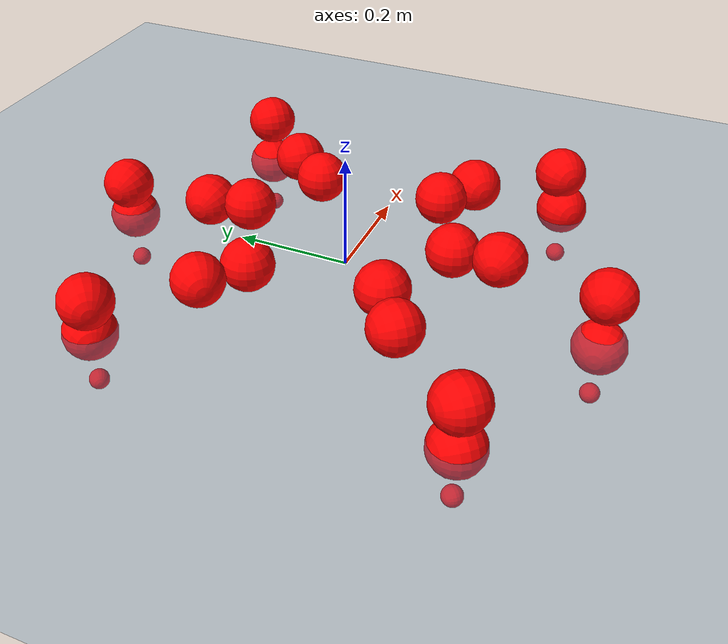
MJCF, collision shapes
<mujoco model="Golem">
  <compiler angle="radian" assetdir="assets" balanceinertia="true" inertiafromgeom="false"/>

  <option timestep="0.005" density="1.2" viscosity="2e-05"/>

  <size nkey="1"/>

  <visual>
    <quality shadowsize="8192"/>
    <map shadowclip="0.5"/>
  </visual>

  <default>
    <default class="/">
      <joint armature="0.01" damping="0.01" frictionloss="0.01"/>
      <geom contype="0" conaffinity="0" group="1" solref="-1000 -80"/>
      <site size="0.01 0.005 0.005" group="5"/>
      <general forcelimited="true" biastype="affine" gainprm="25" biasprm="0 -25 -0.5"/>
      <default class="visual">
        <geom type="mesh" group="2"/>
      </default>
      <default class="collision">
        <geom group="3"/>
      </default>
      <default class="foot">
        <geom size="0.01 0 0" condim="6" group="4" priority="1" solimp="0.015 1 0.01"/>
      </default>
      <default class="reward_collision_sphere">
        <geom group="5" rgba="1 0 0 1"/>
      </default>
    </default>
  </default>

  <asset>
    <texture type="skybox" colorspace="auto" name="//unnamed_texture_0" builtin="gradient" rgb1="0.95 0.95 0.95" rgb2="0.95 0.95 0.95" width="100" height="600"/>
    <texture type="2d" colorspace="auto" name="texplane" builtin="checker" rgb1="0.345 0.575 0.748" rgb2="0.345 0.575 0.748" markrgb="1 1 1" width="512" height="512"/>
    <material name="MatPlane" class="/" texture="texplane" texuniform="true" texrepeat="2 2" specular="0.9"/>
    <mesh name="body" class="/" file="body.stl" scale="0.001 0.001 0.001"/>
    <mesh name="coxa" class="/" file="coxa.stl" scale="0.001 0.001 0.001"/>
    <mesh name="femur" class="/" file="femur.stl" scale="0.001 0.001 0.001"/>
    <mesh name="tibia" class="/" file="tibia.stl" scale="0.001 0.001 0.001"/>
    <mesh name="tarsus" class="/" file="tarsus.stl" scale="0.001 0.001 0.001"/>
  </asset>

  <worldbody>
    <geom name="floor" class="/" size="100 100 0.125" type="plane" group="0" material="MatPlane"/>
    <light name="toplight_shadow" class="/" pos="0 0 5" dir="0.0990148 0.0990148 -0.990148" type="directional" ambient="0.04 0.04 0.04" diffuse="0.55 0.55 0.55" specular="0.12 0.12 0.12"/>
    <light name="toplight_fill" class="/" pos="0 0 5" dir="0.0990148 0.0990148 -0.990148" type="directional" castshadow="false" ambient="0.04 0.04 0.04" diffuse="0.3 0.3 0.3" specular="0.08 0.08 0.08"/>
    <body name="trunk" pos="0.00893009 0.00119352 0.00700664" quat="0.999999 0.000120267 0.000589787 -0.000953582">
      <inertial pos="0.00227082 0.00407223 0.0124089" quat="0.997983 -0.00672603 -0.0599746 -0.0197078" mass="5.74034" diaginertia="0.00718633 0.0992001 0.00606301"/>
      <joint name="//unnamed_joint_0" type="free"/>
      <geom name="//unnamed_geom_1" class="/" pos="0 0 0.0569268" quat="1 0 0 0" type="mesh" rgba="0.9 0.9 0.9 1" mesh="body"/>
      <site name="imu" class="/" pos="0.0868186 0.0237012 0.121876" size="0.0112761"/>
      <camera name="track" class="/" pos="0 -3.15879 0" quat="0.707107 0.707107 0 0" mode="trackcom"/>
      <camera name="ego_camera" class="/" pos="0.118814 0 0.0889482" quat="-0.5 -0.5 0.5 0.5"/>
      <body name="coxa_RR" pos="-0.162615 -0.141127 0.0657745" quat="0.382888 0.00027792 0.00024608 -0.923795">
        <inertial pos="0.00483312 0.00107404 0.00611754" quat="0.99912 0.00273548 -0.00671135 0.0413111" mass="0.326542" diaginertia="0.00613813 0.110088 0.00632468"/>
        <joint name="coxa_joint_RR" class="/" pos="0 0 0" axis="-0.0300141 -0.0226185 -0.999294" range="-3.01779 2.88641" armature="0.0151113" damping="0.0182432" frictionloss="0.0155549"/>
        <geom name="//unnamed_geom_2" class="/" type="mesh" rgba="0.2 0.2 0.2 1" mesh="coxa"/>
        <geom name="//unnamed_geom_3" class="reward_collision_sphere" size="0.0451045" pos="-0.0274187 0 0"/>
        <body name="femur_RR" pos="0.0540727 -0.0144482 -0.0100217" quat="0.500748 -0.499701 0.500018 0.499532">
          <inertial pos="0.00544679 -0.0124204 -0.013965" quat="0.999901 -0.00586225 -0.0120368 0.00435041" mass="0.286564" diaginertia="0.00562692 0.0926763 0.00471799"/>
          <joint name="femur_joint_RR" class="/" pos="0 0 0" axis="-0.0158384 0.0129566 -0.999791" stiffness="0.0174066" range="-3.18928 3.12196" armature="0.00866262" damping="0" frictionloss="0.00328911"/>
          <geom name="//unnamed_geom_4" class="/" type="mesh" rgba="0.9 0.9 0.9 1" mesh="femur"/>
          <geom name="//unnamed_geom_5" class="reward_collision_sphere" size="0.0451045"/>
          <body name="tibia_RR" pos="-0.00611609 -0.183103 0.0135788" quat="0.000112181 1 0.00020933 9.27907e-05">
            <inertial pos="-0.00731184 0.0129664 -0.00136224" quat="0.999986 -0.00366807 -0.00388764 -0.000245411" mass="0.26894" diaginertia="0.00644845 0.100672 0.00562913"/>
            <joint name="tibia_joint_RR" class="/" pos="0 0 0" axis="-0.00691653 0.00731261 0.999949" range="-3.1299 3.12072" armature="0.0109018" damping="0" frictionloss="0.0159612"/>
            <geom name="//unnamed_geom_6" class="/" type="mesh" rgba="0.2 0.2 0.2 1" mesh="tibia"/>
            <geom name="//unnamed_geom_7" class="reward_collision_sphere" size="0.0451045"/>
            <body name="tarsus_RR" pos="0.0821879 2.60824e-05 -5.24637e-05" quat="1 0.000351642 -3.41512e-05 0.000424219">
              <inertial pos="0.0629943 -0.000526813 0.00126341" quat="0.502471 0.471744 0.524312 0.500078" mass="0.250909" diaginertia="0.00537717 0.102399 0.00537806"/>
              <joint name="tarsus_joint_RR" class="/" pos="0 0 0" axis="-0.00359319 0.0215902 0.99976" stiffness="0.00184906" range="-2.86215 2.85118" armature="0.011006" damping="0" frictionloss="0.0115409"/>
              <geom name="//unnamed_geom_8" class="/" type="mesh" rgba="0.9 0.9 0.9 1" mesh="tarsus"/>
              <geom name="foot_1" class="foot" size="0.00768187" pos="0.102363 0 0" quat="0 -0.707107 0 0.707107"/>
              <geom name="//unnamed_geom_10" class="reward_collision_sphere" size="0.0451045"/>
              <geom name="//unnamed_geom_11" class="reward_collision_sphere" size="0.0169142" pos="0.0982504 0 0"/>
              <site name="foot_1" class="foot" pos="0.102363 0 0" quat="0 -0.707107 0 0.707107" size="0.0112761"/>
            </body>
          </body>
        </body>
      </body>
      <body name="coxa_RM" pos="0.0127626 -0.209995 0.0554884" quat="0.706147 0.00267902 -0.00102711 -0.70806">
        <inertial pos="-0.000290598 0.00789238 0.000869092" quat="0.997732 -0.00145424 -0.00834029 -0.0667752" mass="0.24203" diaginertia="0.00525518 0.0964275 0.00478744"/>
        <joint name="coxa_joint_RM" class="/" pos="0 0 0" axis="0.0137409 0.0155951 -0.999784" stiffness="0.00540258" range="-3.08207 3.09436" armature="0.0119079" damping="0.000858694" frictionloss="0.0121421"/>
        <geom name="//unnamed_geom_12" class="/" type="mesh" rgba="0.2 0.2 0.2 1" mesh="coxa"/>
        <geom name="//unnamed_geom_13" class="reward_collision_sphere" size="0.0451045" pos="-0.0274187 0 0"/>
        <body name="femur_RM" pos="0.0527967 -0.00281043 0.00594551" quat="0.495638 -0.504006 0.501313 0.499006">
          <inertial pos="0.0128215 0.00753862 0.0142388" quat="0.99998 -0.00193032 -0.00289619 -0.00523703" mass="0.246198" diaginertia="0.00648717 0.097505 0.0051123"/>
          <joint name="femur_joint_RM" class="/" pos="0 0 0" axis="0.0357653 -0.00301485 -0.999356" range="-3.21158 2.88922" armature="0.00859383" damping="0.00996154" frictionloss="0.0179756"/>
          <geom name="//unnamed_geom_14" class="/" type="mesh" rgba="0.9 0.9 0.9 1" mesh="femur"/>
          <geom name="//unnamed_geom_15" class="reward_collision_sphere" size="0.0451045"/>
          <body name="tibia_RM" pos="0.00987251 -0.178405 -0.0138515" quat="0.00147458 0.999994 0.00208734 -0.00221029">
            <inertial pos="-0.00209385 -0.00398962 0.00109335" quat="0.999999 -0.000783027 -0.000337302 0.000830562" mass="0.26529" diaginertia="0.00527517 0.0828109 0.00509022"/>
            <joint name="tibia_joint_RM" class="/" pos="0 0 0" axis="0.0583504 0.0243679 0.997999" stiffness="0.00824736" range="-3.24638 3.36691" armature="0.012164" damping="0.0440282" frictionloss="0.00776851"/>
            <geom name="//unnamed_geom_16" class="/" type="mesh" rgba="0.2 0.2 0.2 1" mesh="tibia"/>
            <geom name="//unnamed_geom_17" class="reward_collision_sphere" size="0.0451045"/>
            <body name="tarsus_RM" pos="0.0899647 0.000949122 0.0123774" quat="1 0.000866843 -0.000185393 -0.000193772">
              <inertial pos="0.0584794 0.00145336 -0.00897746" quat="0.536157 0.466569 0.496298 0.498535" mass="0.272514" diaginertia="0.00537652 0.0923084 0.006132"/>
              <joint name="tarsus_joint_RM" class="/" pos="0 0 0" axis="0.0197592 -0.0143257 0.999702" stiffness="0.0254446" range="-2.90833 3.40276" armature="0.0106647" damping="0" frictionloss="0.0132817"/>
              <geom name="//unnamed_geom_18" class="/" type="mesh" rgba="0.9 0.9 0.9 1" mesh="tarsus"/>
              <geom name="foot_2" class="foot" size="0.00937823" pos="0.102363 0 0" quat="0 -0.707107 0 0.707107"/>
              <geom name="//unnamed_geom_20" class="reward_collision_sphere" size="0.0451045"/>
              <geom name="//unnamed_geom_21" class="reward_collision_sphere" size="0.0169142" pos="0.0982504 0 0"/>
              <site name="foot_2" class="foot" pos="0.102363 0 0" quat="0 -0.707107 0 0.707107" size="0.0112761"/>
            </body>
          </body>
        </body>
      </body>
      <body name="coxa_RF" pos="0.160463 -0.137422 0.0682005" quat="0.922732 -0.000987865 -0.00225768 -0.385434">
        <inertial pos="-0.0050934 0.014987 -0.00288828" quat="0.999784 -0.00841062 -0.0152458 -0.0113446" mass="0.271778" diaginertia="0.00610251 0.0858733 0.00485406"/>
        <joint name="coxa_joint_RF" class="/" pos="0 0 0" axis="-0.00955316 -0.0219512 -0.999713" stiffness="0.019337" range="-3.13383 2.95518" armature="0.0118759" damping="0.0567865" frictionloss="0.0106706"/>
        <geom name="//unnamed_geom_22" class="/" type="mesh" rgba="0.2 0.2 0.2 1" mesh="coxa"/>
        <geom name="//unnamed_geom_23" class="reward_collision_sphere" size="0.0451045" pos="-0.0274187 0 0"/>
        <body name="femur_RF" pos="0.0412506 0.00638296 0.0073351" quat="0.500214 -0.499966 0.4999 0.49992">
          <inertial pos="-0.00184113 -0.000265974 -0.0103839" quat="0.999809 0.00830021 0.0161732 0.00715664" mass="0.292253" diaginertia="0.00625498 0.104946 0.00505399"/>
          <joint name="femur_joint_RF" class="/" pos="0 0 0" axis="0.000416911 0.00256556 -0.999997" range="-3.39075 3.07662" armature="0.0124223" damping="0.0149547" frictionloss="0.0167336"/>
          <geom name="//unnamed_geom_24" class="/" type="mesh" rgba="0.9 0.9 0.9 1" mesh="femur"/>
          <geom name="//unnamed_geom_25" class="reward_collision_sphere" size="0.0451045"/>
          <body name="tibia_RF" pos="0.00871029 -0.172187 -0.00627927" quat="0.000215281 1 4.6744e-05 0.000645637">
            <inertial pos="-0.00901116 0.00680166 -0.00073301" quat="0.997726 0.00993326 -0.0636117 -0.0199449" mass="0.263153" diaginertia="0.00656321 0.109217 0.00543113"/>
            <joint name="tibia_joint_RF" class="/" pos="0 0 0" axis="0.0423327 -0.026682 0.998747" range="-3.14499 3.12429" armature="0.00971832" damping="0" frictionloss="0.0116601"/>
            <geom name="//unnamed_geom_26" class="/" type="mesh" rgba="0.2 0.2 0.2 1" mesh="tibia"/>
            <geom name="//unnamed_geom_27" class="reward_collision_sphere" size="0.0451045"/>
            <body name="tarsus_RF" pos="0.0663012 0.00115911 0.0150149" quat="0.999993 -0.0021206 -0.00307541 -8.05006e-06">
              <inertial pos="0.0488548 0.0112577 -0.0043481" quat="0.497351 0.518278 0.487208 0.496648" mass="0.339031" diaginertia="0.00656873 0.112931 0.00515511"/>
              <joint name="tarsus_joint_RF" class="/" pos="0 0 0" axis="0.0448911 -0.0291648 0.998566" stiffness="0.011983" range="-2.94147 3.1279" armature="0.0111639" damping="0" frictionloss="0.0136368"/>
              <geom name="//unnamed_geom_28" class="/" type="mesh" rgba="0.9 0.9 0.9 1" mesh="tarsus"/>
              <geom name="foot_3" class="foot" size="0.0103076" pos="0.102363 0 0" quat="0 -0.707107 0 0.707107"/>
              <geom name="//unnamed_geom_30" class="reward_collision_sphere" size="0.0451045"/>
              <geom name="//unnamed_geom_31" class="reward_collision_sphere" size="0.0169142" pos="0.0982504 0 0"/>
              <site name="foot_3" class="foot" pos="0.102363 0 0" quat="0 -0.707107 0 0.707107" size="0.0112761"/>
            </body>
          </body>
        </body>
      </body>
      <body name="coxa_LR" pos="-0.165136 0.130537 0.0477023" quat="0.384831 -0.00160976 -0.00145189 0.922985">
        <inertial pos="0.00257051 0.00297035 -0.0112648" quat="0.999988 0.0033451 0.00107666 0.00328676" mass="0.282523" diaginertia="0.00608589 0.0929453 0.00607818"/>
        <joint name="coxa_joint_LR" class="/" pos="0 0 0" axis="0.000556662 -0.00856301 -0.999963" stiffness="0.0498087" range="-3.009 3.04586" armature="0.0146532" damping="0.0252314" frictionloss="0.018556"/>
        <geom name="//unnamed_geom_32" class="/" type="mesh" rgba="0.2 0.2 0.2 1" mesh="coxa"/>
        <geom name="//unnamed_geom_33" class="reward_collision_sphere" size="0.0451045" pos="-0.0274187 0 0"/>
        <body name="femur_LR" pos="0.0570353 0.00864827 -0.00276446" quat="0.499327 -0.499015 0.501117 0.500538">
          <inertial pos="-0.0119401 0.0059787 -0.00959865" quat="0.999687 -0.00064107 0.00351298 -0.0247492" mass="0.335567" diaginertia="0.00634662 0.09881 0.00560197"/>
          <joint name="femur_joint_LR" class="/" pos="0 0 0" axis="0.00475086 -0.00728813 0.999962" range="-2.8606 3.38862" armature="0.0184381" damping="0.00400576" frictionloss="0.0116922"/>
          <geom name="//unnamed_geom_34" class="/" type="mesh" rgba="0.9 0.9 0.9 1" mesh="femur"/>
          <geom name="//unnamed_geom_35" class="reward_collision_sphere" size="0.0451045"/>
          <body name="tibia_LR" pos="-0.00342212 -0.174875 -0.00346111" quat="0.00207663 0.999994 -0.00266503 -0.000945709">
            <inertial pos="-0.00724479 0.00992096 -0.00156964" quat="0.99998 -0.00298806 0.00148546 0.00542791" mass="0.248547" diaginertia="0.00607989 0.0842227 0.00611639"/>
            <joint name="tibia_joint_LR" class="/" pos="0 0 0" axis="-0.0495186 -0.0298731 -0.998326" stiffness="0.0359578" range="-3.17302 3.3611" armature="0.0140781" damping="0" frictionloss="0.0118656"/>
            <geom name="//unnamed_geom_36" class="/" type="mesh" rgba="0.2 0.2 0.2 1" mesh="tibia"/>
            <geom name="//unnamed_geom_37" class="reward_collision_sphere" size="0.0451045"/>
            <body name="tarsus_LR" pos="0.0671372 0.00127103 0.00866883" quat="0.99998 0.00532416 0.00321867 -0.000972083">
              <inertial pos="0.0659432 0.0105247 0.00425121" quat="0.502538 0.498702 0.499025 0.499725" mass="0.289595" diaginertia="0.00651031 0.11467 0.0051105"/>
              <joint name="tarsus_joint_LR" class="/" pos="0 0 0" axis="-0.00553863 0.00370019 -0.999978" stiffness="0.0395458" range="-3.14563 3.13945" armature="0.00794122" damping="0.00165101" frictionloss="0.00459518"/>
              <geom name="//unnamed_geom_38" class="/" type="mesh" rgba="0.9 0.9 0.9 1" mesh="tarsus"/>
              <geom name="foot_4" class="foot" size="0.0109537" pos="0.102363 0 0" quat="0.707107 0 -0.707107 0"/>
              <geom name="//unnamed_geom_40" class="reward_collision_sphere" size="0.0451045"/>
              <geom name="//unnamed_geom_41" class="reward_collision_sphere" size="0.0169142" pos="0.0982504 0 0"/>
              <site name="foot_4" class="foot" pos="0.102363 0 0" quat="0.707107 0 -0.707107 0" size="0.0112761"/>
            </body>
          </body>
        </body>
      </body>
      <body name="coxa_LM" pos="0.00548358 0.21397 0.0572349" quat="0.706809 9.22286e-05 -0.000886774 0.707404">
        <inertial pos="-0.0115855 -0.000494572 -0.00481809" quat="0.999689 -0.0058513 -0.00166285 -0.024203" mass="0.330247" diaginertia="0.00597055 0.112944 0.00665677"/>
        <joint name="coxa_joint_LM" class="/" pos="0 0 0" axis="0.0045804 -0.00583758 -0.999972" range="-3.16904 3.14731" armature="0.0112117" damping="0.0428356" frictionloss="0.0158093"/>
        <geom name="//unnamed_geom_42" class="/" type="mesh" rgba="0.2 0.2 0.2 1" mesh="coxa"/>
        <geom name="//unnamed_geom_43" class="reward_collision_sphere" size="0.0451045" pos="-0.0274187 0 0"/>
        <body name="femur_LM" pos="0.0525765 -0.000103796 -0.0105207" quat="0.500016 -0.499714 0.500063 0.500206">
          <inertial pos="-0.00828635 0.00105355 0.00720842" quat="0.999745 -0.00246298 0.0224386 -0.00043998" mass="0.270152" diaginertia="0.00669017 0.0879807 0.00423757"/>
          <joint name="femur_joint_LM" class="/" pos="0 0 0" axis="0.0453376 0.0477277 0.997831" stiffness="0.00594869" range="-3.39432 3.26688" armature="0.0126007" damping="0.0810005" frictionloss="0.0114978"/>
          <geom name="//unnamed_geom_44" class="/" type="mesh" rgba="0.9 0.9 0.9 1" mesh="femur"/>
          <geom name="//unnamed_geom_45" class="reward_collision_sphere" size="0.0451045"/>
          <body name="tibia_LM" pos="0.00777196 -0.174718 -0.000768544" quat="5.56198e-05 0.999998 -0.000616313 0.00208997">
            <inertial pos="0.0128262 0.000546927 0.000956969" quat="0.999742 0.0113157 -0.0142443 -0.013629" mass="0.275716" diaginertia="0.00624398 0.0979119 0.00500897"/>
            <joint name="tibia_joint_LM" class="/" pos="0 0 0" axis="5.0507e-05 -0.00616315 -0.999981" range="-3.2201 3.26608" armature="0.0165198" damping="0" frictionloss="0.0196181"/>
            <geom name="//unnamed_geom_46" class="/" type="mesh" rgba="0.2 0.2 0.2 1" mesh="tibia"/>
            <geom name="//unnamed_geom_47" class="reward_collision_sphere" size="0.0451045"/>
            <body name="tarsus_LM" pos="0.0678159 -0.00216895 0.00490992" quat="0.999997 0.000521636 0.00168155 -0.00152476">
              <inertial pos="0.0653168 -0.00060834 0.00832805" quat="0.47082 0.52625 0.527785 0.472051" mass="0.277432" diaginertia="0.00667526 0.0980164 0.00580004"/>
              <joint name="tarsus_joint_LM" class="/" pos="0 0 0" axis="0.00593004 0.0111139 -0.999921" stiffness="0.00565076" range="-3.33773 3.14413" armature="0.00866019" damping="0" frictionloss="0.0107384"/>
              <geom name="//unnamed_geom_48" class="/" type="mesh" rgba="0.9 0.9 0.9 1" mesh="tarsus"/>
              <geom name="foot_5" class="foot" size="0.00498362" pos="0.102363 0 0" quat="0.707107 0 -0.707107 0"/>
              <geom name="//unnamed_geom_50" class="reward_collision_sphere" size="0.0451045"/>
              <geom name="//unnamed_geom_51" class="reward_collision_sphere" size="0.0169142" pos="0.0982504 0 0"/>
              <site name="foot_5" class="foot" pos="0.102363 0 0" quat="0.707107 0 -0.707107 0" size="0.0112761"/>
            </body>
          </body>
        </body>
      </body>
      <body name="coxa_LF" pos="0.15924 0.129752 0.0581703" quat="0.924314 0.00207687 -0.00130446 0.381625">
        <inertial pos="0.000520971 0.0138485 0.00379948" quat="0.99825 0.0355258 0.0462343 0.00983271" mass="0.223375" diaginertia="0.00521748 0.0836848 0.00471665"/>
        <joint name="coxa_joint_LF" class="/" pos="0 0 0" axis="0.00890397 0.0379985 -0.999238" stiffness="0.0482588" range="-3.33216 3.13595" armature="0.00731871" damping="0" frictionloss="0.0173994"/>
        <geom name="//unnamed_geom_52" class="/" type="mesh" rgba="0.2 0.2 0.2 1" mesh="coxa"/>
        <geom name="//unnamed_geom_53" class="reward_collision_sphere" size="0.0451045" pos="-0.0274187 0 0"/>
        <body name="femur_LF" pos="0.0660471 0.00897161 -0.0048617" quat="0.498687 -0.500374 0.500572 0.500365">
          <inertial pos="0.00254651 -0.00857546 0.011605" quat="0.999855 -0.00178032 -0.00298362 -0.0166521" mass="0.262658" diaginertia="0.0054014 0.087293 0.00565019"/>
          <joint name="femur_joint_LF" class="/" pos="0 0 0" axis="-0.0137526 -0.0126034 0.999826" stiffness="0.0678531" range="-3.07956 3.12628" armature="0.00630608" damping="0.00434474" frictionloss="0.011898"/>
          <geom name="//unnamed_geom_54" class="/" type="mesh" rgba="0.9 0.9 0.9 1" mesh="femur"/>
          <geom name="//unnamed_geom_55" class="reward_collision_sphere" size="0.0451045"/>
          <body name="tibia_LF" pos="-0.00211464 -0.16227 0.00388181" quat="3.39791e-06 1 -6.42646e-06 -2.33672e-07">
            <inertial pos="-0.0126626 -0.0127386 -0.0143394" quat="0.99972 -0.00668557 -0.0122731 -0.0191056" mass="0.289508" diaginertia="0.00637094 0.0884009 0.00460501"/>
            <joint name="tibia_joint_LF" class="/" pos="0 0 0" axis="-0.0126532 -0.026375 -0.999572" range="-3.31942 3.39274" armature="0.0128617" damping="0.010032" frictionloss="0.0160298"/>
            <geom name="//unnamed_geom_56" class="/" type="mesh" rgba="0.2 0.2 0.2 1" mesh="tibia"/>
            <geom name="//unnamed_geom_57" class="reward_collision_sphere" size="0.0451045"/>
            <body name="tarsus_LF" pos="0.0882321 -0.00853993 -0.00472642" quat="1 -0.000557176 -0.000185864 2.83039e-05">
              <inertial pos="0.0637168 0.00391498 -0.0126634" quat="0.538773 0.462712 0.500752 0.494842" mass="0.283423" diaginertia="0.00545381 0.100271 0.00459632"/>
              <joint name="tarsus_joint_LF" class="/" pos="0 0 0" axis="0.000655488 -0.000866861 -0.999999" range="-2.91813 3.40032" armature="0.00670915" damping="0" frictionloss="0.00703281"/>
              <geom name="//unnamed_geom_58" class="/" type="mesh" rgba="0.9 0.9 0.9 1" mesh="tarsus"/>
              <geom name="foot_6" class="foot" size="0.00761968" pos="0.102363 0 0" quat="0.707107 0 -0.707107 0"/>
              <geom name="//unnamed_geom_60" class="reward_collision_sphere" size="0.0451045"/>
              <geom name="//unnamed_geom_61" class="reward_collision_sphere" size="0.0169142" pos="0.0982504 0 0"/>
              <site name="foot_6" class="foot" pos="0.102363 0 0" quat="0.707107 0 -0.707107 0" size="0.0112761"/>
            </body>
          </body>
        </body>
      </body>
    </body>
  </worldbody>

  <contact>
    <pair class="/" geom1="floor" geom2="foot_1" name="//unnamed_contact_0"/>
    <pair class="/" geom1="floor" geom2="foot_2" name="//unnamed_contact_1"/>
    <pair class="/" geom1="floor" geom2="foot_3" name="//unnamed_contact_2"/>
    <pair class="/" geom1="floor" geom2="foot_4" name="//unnamed_contact_3"/>
    <pair class="/" geom1="floor" geom2="foot_5" name="//unnamed_contact_4"/>
    <pair class="/" geom1="floor" geom2="foot_6" name="//unnamed_contact_5"/>
  </contact>

  <actuator>
    <general name="coxa_joint_RR" class="/" joint="coxa_joint_RR" forcerange="-9.2116 9.2116" gainprm="18.2254" biasprm="0 -18.2254 -0.56338"/>
    <general name="femur_joint_RR" class="/" joint="femur_joint_RR" forcerange="-8.51632 8.51632" gainprm="18.2254" biasprm="0 -18.2254 -0.56338"/>
    <general name="tibia_joint_RR" class="/" joint="tibia_joint_RR" forcerange="-8.37492 8.37492" gainprm="18.2254" biasprm="0 -18.2254 -0.56338"/>
    <general name="tarsus_joint_RR" class="/" joint="tarsus_joint_RR" forcerange="-7.98857 7.98857" gainprm="18.2254" biasprm="0 -18.2254 -0.56338"/>
    <general name="coxa_joint_RM" class="/" joint="coxa_joint_RM" forcerange="-8.43694 8.43694" gainprm="18.2254" biasprm="0 -18.2254 -0.56338"/>
    <general name="femur_joint_RM" class="/" joint="femur_joint_RM" forcerange="-8.51048 8.51048" gainprm="18.2254" biasprm="0 -18.2254 -0.56338"/>
    <general name="tibia_joint_RM" class="/" joint="tibia_joint_RM" forcerange="-7.8953 7.8953" gainprm="18.2254" biasprm="0 -18.2254 -0.56338"/>
    <general name="tarsus_joint_RM" class="/" joint="tarsus_joint_RM" forcerange="-11.2815 11.2815" gainprm="18.2254" biasprm="0 -18.2254 -0.56338"/>
    <general name="coxa_joint_RF" class="/" joint="coxa_joint_RF" forcerange="-8.40248 8.40248" gainprm="18.2254" biasprm="0 -18.2254 -0.56338"/>
    <general name="femur_joint_RF" class="/" joint="femur_joint_RF" forcerange="-8.29389 8.29389" gainprm="18.2254" biasprm="0 -18.2254 -0.56338"/>
    <general name="tibia_joint_RF" class="/" joint="tibia_joint_RF" forcerange="-8.46884 8.46884" gainprm="18.2254" biasprm="0 -18.2254 -0.56338"/>
    <general name="tarsus_joint_RF" class="/" joint="tarsus_joint_RF" forcerange="-9.31813 9.31813" gainprm="18.2254" biasprm="0 -18.2254 -0.56338"/>
    <general name="coxa_joint_LR" class="/" joint="coxa_joint_LR" forcerange="-9.74288 9.74288" gainprm="18.2254" biasprm="0 -18.2254 -0.56338"/>
    <general name="femur_joint_LR" class="/" joint="femur_joint_LR" forcerange="-11.6976 11.6976" gainprm="18.2254" biasprm="0 -18.2254 -0.56338"/>
    <general name="tibia_joint_LR" class="/" joint="tibia_joint_LR" forcerange="-7.59057 7.59057" gainprm="18.2254" biasprm="0 -18.2254 -0.56338"/>
    <general name="tarsus_joint_LR" class="/" joint="tarsus_joint_LR" forcerange="-8.35363 8.35363" gainprm="18.2254" biasprm="0 -18.2254 -0.56338"/>
    <general name="coxa_joint_LM" class="/" joint="coxa_joint_LM" forcerange="-8.00341 8.00341" gainprm="18.2254" biasprm="0 -18.2254 -0.56338"/>
    <general name="femur_joint_LM" class="/" joint="femur_joint_LM" forcerange="-10.2669 10.2669" gainprm="18.2254" biasprm="0 -18.2254 -0.56338"/>
    <general name="tibia_joint_LM" class="/" joint="tibia_joint_LM" forcerange="-8.34915 8.34915" gainprm="18.2254" biasprm="0 -18.2254 -0.56338"/>
    <general name="tarsus_joint_LM" class="/" joint="tarsus_joint_LM" forcerange="-5.83994 5.83994" gainprm="18.2254" biasprm="0 -18.2254 -0.56338"/>
    <general name="coxa_joint_LF" class="/" joint="coxa_joint_LF" forcerange="-9.57914 9.57914" gainprm="18.2254" biasprm="0 -18.2254 -0.56338"/>
    <general name="femur_joint_LF" class="/" joint="femur_joint_LF" forcerange="-5.29663 5.29663" gainprm="18.2254" biasprm="0 -18.2254 -0.56338"/>
    <general name="tibia_joint_LF" class="/" joint="tibia_joint_LF" forcerange="-8.05658 8.05658" gainprm="18.2254" biasprm="0 -18.2254 -0.56338"/>
    <general name="tarsus_joint_LF" class="/" joint="tarsus_joint_LF" forcerange="-12.7548 12.7548" gainprm="18.2254" biasprm="0 -18.2254 -0.56338"/>
  </actuator>

  <sensor>
    <gyro site="imu" name="imu_angular_velocity"/>
    <velocimeter site="imu" name="imu_linear_velocity"/>
    <framelinvel objtype="site" objname="foot_1" name="foot_1_global_linear_velocity"/>
    <framelinvel objtype="site" objname="foot_2" name="foot_2_global_linear_velocity"/>
    <framelinvel objtype="site" objname="foot_3" name="foot_3_global_linear_velocity"/>
    <framelinvel objtype="site" objname="foot_4" name="foot_4_global_linear_velocity"/>
    <framelinvel objtype="site" objname="foot_5" name="foot_5_global_linear_velocity"/>
    <framelinvel objtype="site" objname="foot_6" name="foot_6_global_linear_velocity"/>
  </sensor>

  <keyframe>
    <key name="home" qpos="0 0 0.1457 1 0 0 0 0 0 0 0 0 0 0 0 0 0 0 0 0 0 0 0 0 0 0 0 0 0 0 0"/>
  </keyframe>
</mujoco>
